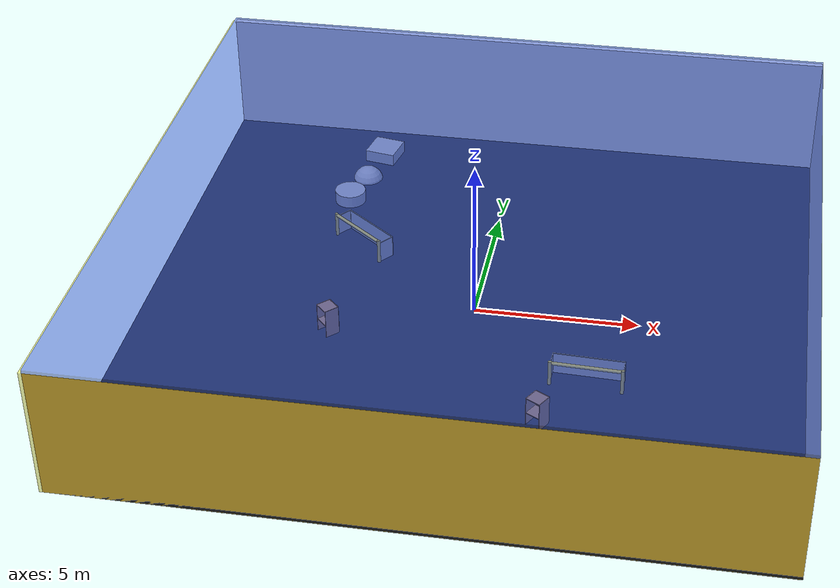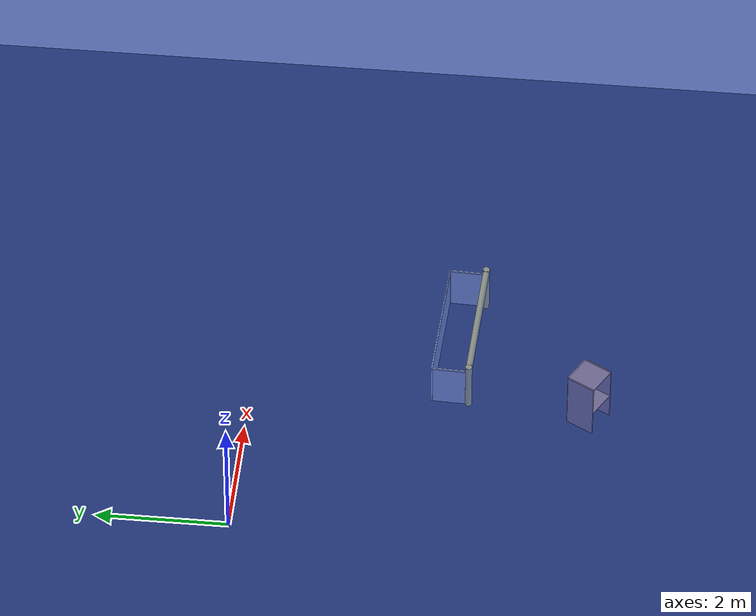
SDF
<sdf version="1.4">
 <world name="default">
  <physics type="ode">
   <max_step_size>0.001</max_step_size>
   <real_time_factor>1</real_time_factor>
   <real_time_update_rate>1000</real_time_update_rate>
   <gravity>0 0 -9.8</gravity>
  </physics>
  <scene><ambient>0.4 0.4 0.4 1</ambient><background>0.7 0.7 0.7 1</background><shadows>1</shadows></scene>
  <model name="Surrounding">
   <static>1</static>
   <link name="Ceiling">
    <collision name="Ceiling_Collision"><geometry><box><size>20 20 0.1</size></box></geometry></collision>
    <visual name="Ceiling_Visual">
     <geometry><box><size>20 20 0.1</size></box></geometry>
     <material>
      <script><uri>file://media/materials/scripts/gazebo.material</uri><name>Gazebo/BlueTransparent</name></script>
     </material>
    </visual>
    <pose>0 0 4.05 0 0 0</pose>
   </link>
   <link name="Wall_South">
    <collision name="Wall_South_Collision">
     <geometry><box><size>20 0 4</size></box></geometry>
     <pose>0 0 2 0 -0 0</pose>
    </collision>
    <visual name="Wall_South_Visual">
     <pose>0 0 2 0 -0 0</pose>
     <geometry><box><size>20 0 4</size></box></geometry>
     <material>
      <script><uri>file://media/materials/scripts/gazebo.material</uri><name>Gazebo/Gold</name></script>
     </material>
    </visual>
    <velocity_decay><linear>0</linear><angular>0</angular></velocity_decay>
    <pose>0 -10 0 0 -0 0</pose>
   </link>
   <link name="Wall_East">
    <collision name="Wall_21_Collision">
     <geometry><box><size>20 0 4</size></box></geometry>
     <pose>0 0 2 0 -0 0</pose>
    </collision>
    <visual name="Wall_21_Visual">
     <pose>0 0 2 0 -0 0</pose>
     <geometry><box><size>20 0 4</size></box></geometry>
     <material>
      <script><uri>file://media/materials/scripts/gazebo.material</uri><name>Gazebo/White</name></script>
     </material>
    </visual>
    <velocity_decay><linear>0</linear><angular>0</angular></velocity_decay>
    <pose>10 0 0 0 -0 1.5708</pose>
   </link>
   <link name="Wall_North">
    <collision name="Wall_22_Collision">
     <geometry><box><size>20 0.2 4</size></box></geometry>
     <pose>0 0 2 0 -0 0</pose>
    </collision>
    <visual name="Wall_22_Visual">
     <pose>0 0 2 0 -0 0</pose>
     <geometry><box><size>20 0.2 4</size></box></geometry>
     <material>
      <script><uri>file://media/materials/scripts/gazebo.material</uri><name>Gazebo/White</name></script>
     </material>
    </visual>
    <velocity_decay><linear>0</linear><angular>0</angular></velocity_decay>
    <pose>0 10 0 0 -0 0</pose>
   </link>
   <link name="Wall_West">
    <collision name="Wall_23_Collision">
     <geometry><box><size>20 0.2 4</size></box></geometry>
     <pose>0 0 2 0 -0 0</pose>
    </collision>
    <visual name="Wall_23_Visual">
     <pose>0 0 2 0 -0 0</pose>
     <geometry><box><size>20 0.2 4</size></box></geometry>
     <material>
      <script>
       <uri>file://media/materials/scripts/gazebo.material</uri>
       <name>Gazebo/YellowTransparent</name>
      </script>
     </material>
    </visual>
    <velocity_decay><linear>0</linear><angular>0</angular></velocity_decay>
    <pose>-10 0 0 0 0 -1.5708</pose>
   </link>
   <link name="Ground_link">
    <collision name="collision">
     <pose>0 0 .05 0 -0 0</pose>
     <geometry><box><size>20 20 0.1</size></box></geometry>
    </collision>
    <visual name="visual">
     <pose>0 0 .05 0 -0 0</pose>
     <geometry><box><size>20 20 0.1</size></box></geometry>
     <material>
      <script><uri>file://media/materials/scripts/gazebo.material</uri><name>Gazebo/Black</name></script>
     </material>
    </visual>
   </link>
   <static>1</static>
  </model>
  <spherical_coordinates>
   <surface_model>EARTH_WGS84</surface_model>
   <latitude_deg>0</latitude_deg>
   <longitude_deg>0</longitude_deg>
   <elevation>0</elevation>
   <heading_deg>0</heading_deg>
  </spherical_coordinates>
  <light name="lightball_0" type="diffuse">
   <diffuse>0.8 0.8 0.8 1</diffuse>
   <specular>0.2 0.2 0.2 1</specular>
   <attenuation>
    <range>100</range>
    <constant>0.7</constant>
    <linear>0.01</linear>
    <quadratic>0.001</quadratic>
   </attenuation>
   <direction>-0.5 0.1 -0.9</direction>
   <pose>-9.91441966196 0.938706095136 1.6303642143 0 0 0</pose>
  </light>
  <light name="lightball_1" type="diffuse">
   <diffuse>0.8 0.8 0.8 1</diffuse>
   <specular>0.2 0.2 0.2 1</specular>
   <attenuation>
    <range>100</range>
    <constant>0.7</constant>
    <linear>0.01</linear>
    <quadratic>0.001</quadratic>
   </attenuation>
   <direction>-0.5 0.1 -0.9</direction>
   <pose>-0.45467525305 8.33071838596 3.15595596671 0 0 0</pose>
  </light>
  <light name="lightball_2" type="diffuse">
   <diffuse>0.8 0.8 0.8 1</diffuse>
   <specular>0.2 0.2 0.2 1</specular>
   <attenuation>
    <range>100</range>
    <constant>0.7</constant>
    <linear>0.01</linear>
    <quadratic>0.001</quadratic>
   </attenuation>
   <direction>-0.5 0.1 -0.9</direction>
   <pose>-0.203772877009 9.85400553049 2.6652440342 0 0 0</pose>
  </light>
  <light name="lightball_3" type="diffuse">
   <diffuse>0.8 0.8 0.8 1</diffuse>
   <specular>0.2 0.2 0.2 1</specular>
   <attenuation>
    <range>100</range>
    <constant>0.7</constant>
    <linear>0.01</linear>
    <quadratic>0.001</quadratic>
   </attenuation>
   <direction>-0.5 0.1 -0.9</direction>
   <pose>7.22175663648 -7.5137726025 2.96566645157 0 0 0</pose>
  </light>
  <light name="lightball_4" type="diffuse">
   <diffuse>0.8 0.8 0.8 1</diffuse>
   <specular>0.2 0.2 0.2 1</specular>
   <attenuation>
    <range>100</range>
    <constant>0.7</constant>
    <linear>0.01</linear>
    <quadratic>0.001</quadratic>
   </attenuation>
   <direction>-0.5 0.1 -0.9</direction>
   <pose>-4.05299478616 -0.613638540988 2.89678451751 0 0 0</pose>
  </light>
  <light name="lightball_5" type="diffuse">
   <diffuse>0.8 0.8 0.8 1</diffuse>
   <specular>0.2 0.2 0.2 1</specular>
   <attenuation>
    <range>100</range>
    <constant>0.7</constant>
    <linear>0.01</linear>
    <quadratic>0.001</quadratic>
   </attenuation>
   <direction>-0.5 0.1 -0.9</direction>
   <pose>5.09918907071 -7.29969878314 3.8899785434 0 0 0</pose>
  </light>
  <light name="lightball_6" type="diffuse">
   <diffuse>0.8 0.8 0.8 1</diffuse>
   <specular>0.2 0.2 0.2 1</specular>
   <attenuation>
    <range>100</range>
    <constant>0.7</constant>
    <linear>0.01</linear>
    <quadratic>0.001</quadratic>
   </attenuation>
   <direction>-0.5 0.1 -0.9</direction>
   <pose>7.86490671047 -4.42557032224 3.26085281534 0 0 0</pose>
  </light>
  <light name="lightball_7" type="diffuse">
   <diffuse>0.8 0.8 0.8 1</diffuse>
   <specular>0.2 0.2 0.2 1</specular>
   <attenuation>
    <range>100</range>
    <constant>0.7</constant>
    <linear>0.01</linear>
    <quadratic>0.001</quadratic>
   </attenuation>
   <direction>-0.5 0.1 -0.9</direction>
   <pose>-2.38703748291 6.20139966287 2.11232789047 0 0 0</pose>
  </light>
  <light name="lightball_8" type="diffuse">
   <diffuse>0.8 0.8 0.8 1</diffuse>
   <specular>0.2 0.2 0.2 1</specular>
   <attenuation>
    <range>100</range>
    <constant>0.7</constant>
    <linear>0.01</linear>
    <quadratic>0.001</quadratic>
   </attenuation>
   <direction>-0.5 0.1 -0.9</direction>
   <pose>-9.00928811534 1.89021831252 1.93928843762 0 0 0</pose>
  </light>
  <light name="lightball_9" type="diffuse">
   <diffuse>0.8 0.8 0.8 1</diffuse>
   <specular>0.2 0.2 0.2 1</specular>
   <attenuation>
    <range>100</range>
    <constant>0.7</constant>
    <linear>0.01</linear>
    <quadratic>0.001</quadratic>
   </attenuation>
   <direction>-0.5 0.1 -0.9</direction>
   <pose>3.98669929176 -5.79041732868 2.17112509153 0 0 0</pose>
  </light>
  <include><uri>model://table</uri><pose>-6.96717858121 -7.27331679252 0 0 0 0.939461460281</pose></include>
  <include><uri>model://cabinet</uri><pose>-4.11011062787 -1.88992109761 0 0 0 0.785987736791</pose></include>
  <include>
   <uri>model://robocup_3Dsim_goal</uri>
   <pose>-4.19487445923 2.5812662458 0 0 0 0.899730932004</pose>
  </include>
  <include>
   <uri>model://textured_shapes</uri>
   <pose>-4.77735628521 6.80641272356 0 0 0 2.95358920076</pose>
  </include>
  <include><uri>model://cabinet</uri><pose>2.60749594118 -5.1502556526 0 0 0 1.05311608767</pose></include>
  <include>
   <uri>model://robocup_3Dsim_goal</uri>
   <pose>3.76672713274 -3.36989502428 0 0 0 1.52848700514</pose>
  </include>
 </world>
</sdf>

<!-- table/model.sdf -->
<sdf version="1.5">
  <model name="table">
    <static>true</static>
    <link name="link">
      <collision name="surface">
        <pose>0 0 1.0 0 0 0</pose>
        <geometry>
          <box>
            <size>1.5 0.8 0.03</size>
          </box>
        </geometry>
        <surface>
          <friction>
            <ode>
              <mu>0.6</mu>
              <mu2>0.6</mu2>
            </ode>
          </friction>
        </surface>
      </collision>
      <visual name="visual1">
        <pose>0 0 1.0 0 0 0</pose>
        <geometry>
          <box>
            <size>1.5 0.8 0.03</size>
          </box>
        </geometry>
        <material>
          <script>
            <uri>model://media/materials/scripts/gazebo.material</uri>
            <name>Gazebo/Wood</name>
          </script>
        </material>
      </visual>
      <collision name="front_left_leg">
        <pose>0.68 0.38 0.5 0 0 0</pose>
        <geometry>
          <cylinder>
            <radius>0.02</radius>
            <length>1.0</length>
          </cylinder>
        </geometry>
      </collision>
      <visual name="front_left_leg">
        <pose>0.68 0.38 0.5 0 0 0</pose>
        <geometry>
          <cylinder>
            <radius>0.02</radius>
            <length>1.0</length>
          </cylinder>
        </geometry>
        <material>
          <script>
            <uri>model://media/materials/scripts/gazebo.material</uri>
            <name>Gazebo/Grey</name>
          </script>
        </material>
      </visual>
      <collision name="front_right_leg">
        <pose>0.68 -0.38 0.5 0 0 0</pose>
        <geometry>
          <cylinder>
            <radius>0.02</radius>
            <length>1.0</length>
          </cylinder>
        </geometry>
      </collision>
      <visual name="front_right_leg">
        <pose>0.68 -0.38 0.5 0 0 0</pose>
        <geometry>
          <cylinder>
            <radius>0.02</radius>
            <length>1.0</length>
          </cylinder>
        </geometry>
        <material>
          <script>
            <uri>model://media/materials/scripts/gazebo.material</uri>
            <name>Gazebo/Grey</name>
          </script>
        </material>
      </visual>
      <collision name="back_right_leg">
        <pose>-0.68 -0.38 0.5 0 0 0</pose>
        <geometry>
          <cylinder>
            <radius>0.02</radius>
            <length>1.0</length>
          </cylinder>
        </geometry>
      </collision>
      <visual name="back_right_leg">
        <pose>-0.68 -0.38 0.5 0 0 0</pose>
        <geometry>
          <cylinder>
            <radius>0.02</radius>
            <length>1.0</length>
          </cylinder>
        </geometry>
        <material>
          <script>
            <uri>model://media/materials/scripts/gazebo.material</uri>
            <name>Gazebo/Grey</name>
          </script>
        </material>
      </visual>
      <collision name="back_left_leg">
        <pose>-0.68 0.38 0.5 0 0 0</pose>
        <geometry>
          <cylinder>
            <radius>0.02</radius>
            <length>1.0</length>
          </cylinder>
        </geometry>
      </collision>
      <visual name="back_left_leg">
        <pose>-0.68 0.38 0.5 0 0 0</pose>
        <geometry>
          <cylinder>
            <radius>0.02</radius>
            <length>1.0</length>
          </cylinder>
        </geometry>
        <material>
          <script>
            <uri>model://media/materials/scripts/gazebo.material</uri>
            <name>Gazebo/Grey</name>
          </script>
        </material>
      </visual>
    </link>
  </model>
</sdf>

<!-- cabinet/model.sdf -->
<sdf version="1.5">
  <model name="cabinet">
    <static>true</static>
    <link name="cabinet_bottom_plate">
      <inertial>
        <pose>0 0 -1 0 0 0</pose>
        <inertia>
          <ixx>2.050000</ixx>
          <ixy>0</ixy>
          <ixz>0</ixz>
          <iyy>2.050000</iyy>
          <iyz>0</iyz>
          <izz>2.050000</izz>
        </inertia>
        <mass>25.000000</mass>
      </inertial>
      <collision name="cabinet_bottom_plate_geom">
        <pose>0 0 0.010000 0 0 0</pose>
        <geometry>
          <box>
            <size>0.450000 0.450000 0.020000</size>
          </box>
        </geometry>
      </collision>
      <visual name="cabinet_bottom_plate_geom_visual">
        <pose>0 0 0.010000 0 0 0</pose>
        <geometry>
          <box>
            <size>0.450000 0.450000 0.020000</size>
          </box>
        </geometry>
        <material>
          <script>
            <uri>model://media/materials/scripts/gazebo.material</uri>
            <name>Gazebo/Wood</name>
          </script>
        </material>
      </visual>
      <collision name="cabinet_bottom_plate_geom_cabinet_back_plate">
        <pose>0.235000 0 0.510000 0 0 0</pose>
        <geometry>
          <box>
            <size>0.020000 0.450000 1.020000</size>
          </box>
        </geometry>
      </collision>
      <visual name="cabinet_bottom_plate_geom_cabinet_back_plate_visual">
        <pose>0.235000 0 0.510000 0 0 0</pose>
        <geometry>
          <box>
            <size>0.020000 0.450000 1.020000</size>
          </box>
        </geometry>
        <material>
          <script>
            <uri>model://media/materials/scripts/gazebo.material</uri>
            <name>Gazebo/Wood</name>
          </script>
        </material>
      </visual>
      <collision name="cabinet_bottom_plate_geom_cabinet_left_plate">
        <pose>0 0.235000 0.510000 0 0 0</pose>
        <geometry>
          <box>
            <size>0.450000 0.020000 1.020000</size>
          </box>
        </geometry>
      </collision>
      <visual name="cabinet_bottom_plate_geom_cabinet_left_plate_visual">
        <pose>0 0.235000 0.510000 0 0 0</pose>
        <geometry>
          <box>
            <size>0.450000 0.020000 1.020000</size>
          </box>
        </geometry>
        <material>
          <script>
            <uri>model://media/materials/scripts/gazebo.material</uri>
            <name>Gazebo/Wood</name>
          </script>
        </material>
      </visual>
      <collision name="cabinet_bottom_plate_geom_cabinet_middle_plate">
        <pose>0 0 0.510000 0 0 0</pose>
        <geometry>
          <box>
            <size>0.450000 0.450000 0.020000</size>
          </box>
        </geometry>
      </collision>
      <visual name="cabinet_bottom_plate_geom_cabinet_middle_plate_visual">
        <pose>0 0 0.510000 0 0 0</pose>
        <geometry>
          <box>
            <size>0.450000 0.450000 0.020000</size>
          </box>
        </geometry>
        <material>
          <script>
            <uri>model://media/materials/scripts/gazebo.material</uri>
            <name>Gazebo/Wood</name>
          </script>
        </material>
      </visual>
      <collision name="cabinet_bottom_plate_geom_cabinet_right_plate">
        <pose>0 -0.235000 0.510000 0 0 0</pose>
        <geometry>
          <box>
            <size>0.450000 0.020000 1.020000</size>
          </box>
        </geometry>
      </collision>
      <visual name="cabinet_bottom_plate_geom_cabinet_right_plate_visual">
        <pose>0 -0.235000 0.510000 0 0 0</pose>
        <geometry>
          <box>
            <size>0.450000 0.020000 1.020000</size>
          </box>
        </geometry>
        <material>
          <script>
            <uri>model://media/materials/scripts/gazebo.material</uri>
            <name>Gazebo/Wood</name>
          </script>
        </material>
      </visual>
      <collision name="cabinet_bottom_plate_geom_cabinet_top_plate">
        <pose>0 0 1.010000 0 0 0</pose>
        <geometry>
          <box>
            <size>0.450000 0.450000 0.020000</size>
          </box>
        </geometry>
      </collision>
      <visual name="cabinet_bottom_plate_geom_cabinet_top_plate_visual">
        <pose>0 0 1.010000 0 0 0</pose>
        <geometry>
          <box>
            <size>0.450000 0.450000 0.020000</size>
          </box>
        </geometry>
        <material>
          <script>
            <uri>model://media/materials/scripts/gazebo.material</uri>
            <name>Gazebo/Wood</name>
          </script>
        </material>
      </visual>
    </link>
  </model>
</sdf>

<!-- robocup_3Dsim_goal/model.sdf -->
<sdf version="1.5">
  <model name="robocup_3d_goal">
    <static>true</static>
    <link name="left_post">
      <pose>0 1.05 0.45 0 0 0</pose>
      <collision name="collision">
        <geometry>
          <cylinder>
            <radius>0.05</radius>
            <length>0.9</length>
          </cylinder>
        </geometry>
      </collision>
      <visual name="visual">
        <geometry>
          <cylinder>
            <radius>0.05</radius>
            <length>0.9</length>
          </cylinder>
        </geometry>
        <material>
          <script>
            <uri>file://media/materials/scripts/gazebo.material</uri>
            <name>Gazebo/ZincYellow</name>
          </script>
        </material>
      </visual>
    </link>
    <link name="left_support_horiz_lower">
      <pose>0.30 1.05 0.01 0 0 0</pose>
      <collision name="collision">
        <geometry>
          <box>
            <size>0.50 0.02 0.02</size>
          </box>
        </geometry>
      </collision>
      <visual name="visual">
        <geometry>
          <box>
            <size>0.50 0.02 0.02</size>
          </box>
        </geometry>
        <material>
          <script>
            <uri>file://media/materials/scripts/gazebo.material</uri>
            <name>Gazebo/White</name>
          </script>
        </material>
      </visual>
    </link>
    <link name="left_support_horiz_upper">
      <pose>0.30 1.05 0.79 0 0 0</pose>
      <collision name="collision">
        <geometry>
          <box>
            <size>0.50 0.02 0.02</size>
          </box>
        </geometry>
      </collision>
      <visual name="visual">
        <geometry>
          <box>
            <size>0.50 0.02 0.02</size>
          </box>
        </geometry>
        <material>
          <script>
            <uri>file://media/materials/scripts/gazebo.material</uri>
            <name>Gazebo/White</name>
          </script>
        </material>
      </visual>
    </link>
    <link name="left_support_vertical">
      <pose>0.56 1.05 0.4 0 1.5708 0</pose>
      <collision name="collision">
        <geometry>
          <box>
            <size>0.80 0.02 0.02</size>
          </box>
        </geometry>
      </collision>
      <visual name="visual">
        <geometry>
          <box>
            <size>0.80 0.02 0.02</size>
          </box>
        </geometry>
        <material>
          <script>
            <uri>file://media/materials/scripts/gazebo.material</uri>
            <name>Gazebo/White</name>
          </script>
        </material>
      </visual>
    </link>
    <link name="right_support_horiz_lower">
      <pose>0.30 -1.05 0.01 0 0 0</pose>
      <collision name="collision">
        <geometry>
          <box>
            <size>0.50 0.02 0.02</size>
          </box>
        </geometry>
      </collision>
      <visual name="visual">
        <geometry>
          <box>
            <size>0.50 0.02 0.02</size>
          </box>
        </geometry>
        <material>
          <script>
            <uri>file://media/materials/scripts/gazebo.material</uri>
            <name>Gazebo/White</name>
          </script>
        </material>
      </visual>
    </link>
    <link name="right_support_horiz_upper">
      <pose>0.30 -1.05 0.79 0 0 0</pose>
      <collision name="collision">
        <geometry>
          <box>
            <size>0.50 0.02 0.02</size>
          </box>
        </geometry>
      </collision>
      <visual name="visual">
        <geometry>
          <box>
            <size>0.50 0.02 0.02</size>
          </box>
        </geometry>
        <material>
          <script>
            <uri>file://media/materials/scripts/gazebo.material</uri>
            <name>Gazebo/White</name>
          </script>
        </material>
      </visual>
    </link>
    <link name="right_support_vertical">
      <pose>0.56 -1.05 0.4 0 1.5708 0</pose>
      <collision name="collision">
        <geometry>
          <box>
            <size>0.80 0.02 0.02</size>
          </box>
        </geometry>
      </collision>
      <visual name="visual">
        <geometry>
          <box>
            <size>0.80 0.02 0.02</size>
          </box>
        </geometry>
        <material>
          <script>
            <uri>file://media/materials/scripts/gazebo.material</uri>
            <name>Gazebo/White</name>
          </script>
        </material>
      </visual>
    </link>
    <link name="center_support_horiz_lower">
      <pose>0.56 0 0.01 0 1.5708 0</pose>
      <collision name="collision">
        <geometry>
          <box>
            <size>0.02 2.08 0.02</size>
          </box>
        </geometry>
      </collision>
      <visual name="visual">
        <geometry>
          <box>
            <size>0.02 2.08 0.02</size>
          </box>
        </geometry>
        <material>
          <script>
            <uri>file://media/materials/scripts/gazebo.material</uri>
            <name>Gazebo/White</name>
          </script>
        </material>
      </visual>
    </link>
    <link name="center_support_horiz_upper">
      <pose>0.56 0 0.79 0 1.5708 0</pose>
      <collision name="collision">
        <geometry>
          <box>
            <size>0.02 2.08 0.02</size>
          </box>
        </geometry>
      </collision>
      <visual name="visual">
        <geometry>
          <box>
            <size>0.02 2.08 0.02</size>
          </box>
        </geometry>
        <material>
          <script>
            <uri>file://media/materials/scripts/gazebo.material</uri>
            <name>Gazebo/White</name>
          </script>
        </material>
      </visual>
    </link>
    <link name="right_post">
      <pose>0 -1.05 0.45 0 0 0</pose>
      <collision name="collision">
        <geometry>
          <cylinder>
            <radius>0.05</radius>
            <length>0.9</length>
          </cylinder>
        </geometry>
      </collision>
      <visual name="visual">
        <geometry>
          <cylinder>
            <radius>0.05</radius>
            <length>0.9</length>
          </cylinder>
        </geometry>
        <material>
          <script>
            <uri>file://media/materials/scripts/gazebo.material</uri>
            <name>Gazebo/ZincYellow</name>
          </script>
        </material>
      </visual>
    </link>
    <link name="crossbar">
      <pose>0 0 0.85 1.57 1.57 0</pose>
      <collision name="collision">
        <geometry>
          <cylinder>
            <radius>0.05</radius>
            <length>2.0</length>
          </cylinder>
        </geometry>
      </collision>
      <visual name="visual">
        <geometry>
          <cylinder>
            <radius>0.05</radius>
            <length>2.0</length>
          </cylinder>
        </geometry>
        <material>
          <script>
            <uri>file://media/materials/scripts/gazebo.material</uri>
            <name>Gazebo/ZincYellow</name>
          </script>
        </material>
      </visual>
    </link>
    <link name="center_net">
      <pose>0.56 0 0.40 0 0 0</pose>
      <collision name="collision">
        <geometry>
          <box>
            <size>0.01 2.1 0.80</size>
          </box>
        </geometry>
      </collision>
      <visual name="visual">
        <geometry>
          <box>
            <size>0.01 2.1 0.80</size>
          </box>
        </geometry>
        <material>
          <script>
            <uri>model://../model_source/models/robocup09_spl_field/materials/scripts/</uri>
            <uri>model://../model_source/models/robocup09_spl_field/materials/textures/</uri>
            <name>RoboCup/Net</name>
          </script>
        </material>
      </visual>
    </link>
    <link name="left_net">
      <pose>0.30 1.05 0.40 0 0 0</pose>
      <collision name="collision">
        <geometry>
          <box>
            <size>0.50 0.01 0.76</size>
          </box>
        </geometry>
      </collision>
      <visual name="visual">
        <geometry>
          <box>
            <size>0.50 0.01 0.76</size>
          </box>
        </geometry>
        <material>
          <script>
            <uri>model://../model_source/models/robocup09_spl_field/materials/scripts/</uri>
            <uri>model://../model_source/models/robocup09_spl_field/materials/textures/</uri>
            <name>RoboCup/Net</name>
          </script>
        </material>
      </visual>
    </link>
    <link name="right_net">
      <pose>0.30 -1.05 0.40 0 0 0</pose>
      <collision name="collision">
        <geometry>
          <box>
            <size>0.50 0.01 0.76</size>
          </box>
        </geometry>
      </collision>
      <visual name="visual">
        <geometry>
          <box>
            <size>0.50 0.01 0.76</size>
          </box>
        </geometry>
        <material>
          <script>
            <uri>model://../model_source/models/robocup09_spl_field/materials/scripts/</uri>
            <uri>model://../model_source/models/robocup09_spl_field/materials/textures/</uri>
            <name>RoboCup/Net</name>
          </script>
        </material>
      </visual>
    </link>
  </model>
</sdf>

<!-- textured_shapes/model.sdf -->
<sdf version="1.6">
  <model name="textured_shapes">
    <pose>0 0 0.5 0 0 0</pose>
    <link name="box">
      <pose>0 -1.5 0 0 0 0</pose>
      <collision name="collision">
        <geometry>
          <box>
            <size>1 1 1</size>
          </box>
        </geometry>
      </collision>
      <visual name="visual">
        <geometry>
          <box>
            <size>1 1 1</size>
          </box>
        </geometry>
        <material>
          <script>
            <uri>model://../model_source/models/textured_shapes/materials/scripts</uri>
            <uri>model://../model_source/models/textured_shapes/materials/textures</uri>
            <name>TexturedShape/Squares</name>
          </script>
        </material>
      </visual>
    </link>
    <link name="sphere">
      <collision name="collision">
        <geometry>
          <sphere>
            <radius>0.5</radius>
          </sphere>
        </geometry>
      </collision>
      <visual name="visual">
        <geometry>
          <sphere>
            <radius>0.5</radius>
          </sphere>
        </geometry>
        <material>
          <script>
            <uri>model://../model_source/models/textured_shapes/materials/scripts</uri>
            <uri>model://../model_source/models/textured_shapes/materials/textures</uri>
            <name>TexturedShape/Squares</name>
          </script>
        </material>
      </visual>
    </link>
    <link name="cylinder">
      <pose>0 1.5 0 0 0 0</pose>
      <collision name="collision">
        <geometry>
          <cylinder>
            <radius>0.5</radius>
            <length>1</length>
          </cylinder>
        </geometry>
      </collision>
      <visual name="visual">
        <geometry>
          <cylinder>
            <radius>0.5</radius>
            <length>1</length>
          </cylinder>
        </geometry>
        <material>
          <script>
            <uri>model://../model_source/models/textured_shapes/materials/scripts</uri>
            <uri>model://../model_source/models/textured_shapes/materials/textures</uri>
            <name>TexturedShape/Squares</name>
          </script>
        </material>
      </visual>
    </link>
  </model>
</sdf>
